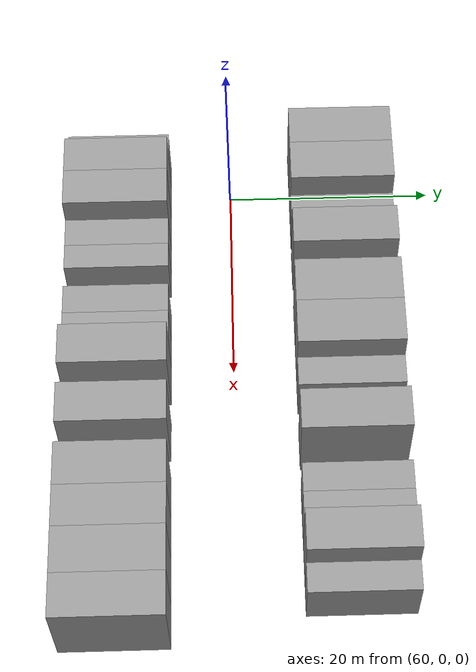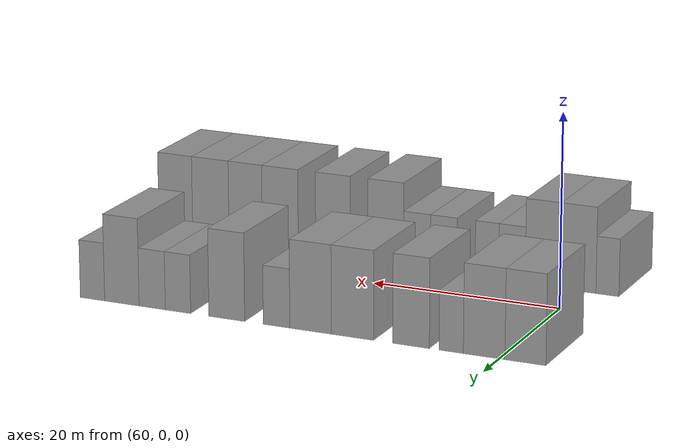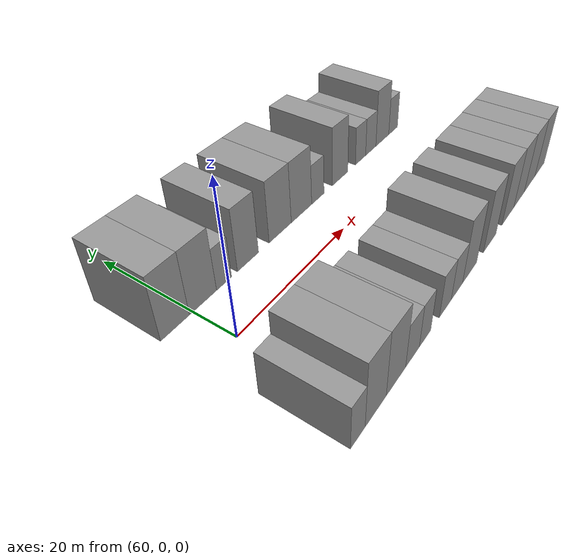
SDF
<sdf version="1.6">
 <world name="default">
  <model name="building_12">
   <static>1</static>
   <pose>57.4109 11.0000 0 0.000000 0.000000 1.570796</pose>
   <link name="link">
    <pose>0 0 4.50 0 0 0</pose>
    <collision name="collision"><geometry><box><size>10.0000 4.1077 9.0000</size></box></geometry></collision>
    <visual name="visual">
     <cast_shadows>0</cast_shadows>
     <geometry><box><size>10.0000 4.1077 9.0000</size></box></geometry>
     <material>
      <script>
       <uri>model://grey_wall/materials/scripts</uri>
       <uri>model://grey_wall/materials/textures</uri>
       <name>vrc/grey_wall</name>
      </script>
     </material>
    </visual>
   </link>
  </model>
  <model name="building_13">
   <static>1</static>
   <pose>61.5724 11.0000 0 0.000000 0.000000 1.570796</pose>
   <link name="link">
    <pose>0 0 4.50 0 0 0</pose>
    <collision name="collision"><geometry><box><size>10.0000 4.2152 9.0000</size></box></geometry></collision>
    <visual name="visual">
     <cast_shadows>0</cast_shadows>
     <geometry><box><size>10.0000 4.2152 9.0000</size></box></geometry>
     <material>
      <script>
       <uri>model://grey_wall/materials/scripts</uri>
       <uri>model://grey_wall/materials/textures</uri>
       <name>vrc/grey_wall</name>
      </script>
     </material>
    </visual>
   </link>
  </model>
  <model name="building_14">
   <static>1</static>
   <pose>64.9226 11.0000 0 0.000000 0.000000 1.570796</pose>
   <link name="link">
    <pose>0 0 3.00 0 0 0</pose>
    <collision name="collision"><geometry><box><size>10.0000 2.4853 6.0000</size></box></geometry></collision>
    <visual name="visual">
     <cast_shadows>0</cast_shadows>
     <geometry><box><size>10.0000 2.4853 6.0000</size></box></geometry>
     <material>
      <script>
       <uri>model://grey_wall/materials/scripts</uri>
       <uri>model://grey_wall/materials/textures</uri>
       <name>vrc/grey_wall</name>
      </script>
     </material>
    </visual>
   </link>
  </model>
  <model name="building_15">
   <static>1</static>
   <pose>69.0574 11.0000 0 0.000000 0.000000 1.570796</pose>
   <link name="link">
    <pose>0 0 4.50 0 0 0</pose>
    <collision name="collision"><geometry><box><size>10.0000 3.7844 9.0000</size></box></geometry></collision>
    <visual name="visual">
     <cast_shadows>0</cast_shadows>
     <geometry><box><size>10.0000 3.7844 9.0000</size></box></geometry>
     <material>
      <script>
       <uri>model://grey_wall/materials/scripts</uri>
       <uri>model://grey_wall/materials/textures</uri>
       <name>vrc/grey_wall</name>
      </script>
     </material>
    </visual>
   </link>
  </model>
  <model name="building_16">
   <static>1</static>
   <pose>75.1733 11.0000 0 0.000000 0.000000 1.570796</pose>
   <link name="link">
    <pose>0 0 4.50 0 0 0</pose>
    <collision name="collision"><geometry><box><size>10.0000 4.4473 9.0000</size></box></geometry></collision>
    <visual name="visual">
     <cast_shadows>0</cast_shadows>
     <geometry><box><size>10.0000 4.4473 9.0000</size></box></geometry>
     <material>
      <script>
       <uri>model://grey_wall/materials/scripts</uri>
       <uri>model://grey_wall/materials/textures</uri>
       <name>vrc/grey_wall</name>
      </script>
     </material>
    </visual>
   </link>
  </model>
  <model name="building_17">
   <static>1</static>
   <pose>79.6025 11.0000 0 0.000000 0.000000 1.570796</pose>
   <link name="link">
    <pose>0 0 4.50 0 0 0</pose>
    <collision name="collision"><geometry><box><size>10.0000 4.4111 9.0000</size></box></geometry></collision>
    <visual name="visual">
     <cast_shadows>0</cast_shadows>
     <geometry><box><size>10.0000 4.4111 9.0000</size></box></geometry>
     <material>
      <script>
       <uri>model://grey_wall/materials/scripts</uri>
       <uri>model://grey_wall/materials/textures</uri>
       <name>vrc/grey_wall</name>
      </script>
     </material>
    </visual>
   </link>
  </model>
  <model name="building_18">
   <static>1</static>
   <pose>83.2336 11.0000 0 0.000000 0.000000 1.570796</pose>
   <link name="link">
    <pose>0 0 3.00 0 0 0</pose>
    <collision name="collision"><geometry><box><size>10.0000 2.8511 6.0000</size></box></geometry></collision>
    <visual name="visual">
     <cast_shadows>0</cast_shadows>
     <geometry><box><size>10.0000 2.8511 6.0000</size></box></geometry>
     <material>
      <script>
       <uri>model://grey_wall/materials/scripts</uri>
       <uri>model://grey_wall/materials/textures</uri>
       <name>vrc/grey_wall</name>
      </script>
     </material>
    </visual>
   </link>
  </model>
  <model name="building_19">
   <static>1</static>
   <pose>88.6047 11.0000 0 0.000000 0.000000 1.570796</pose>
   <link name="link">
    <pose>0 0 4.50 0 0 0</pose>
    <collision name="collision"><geometry><box><size>10.0000 3.8911 9.0000</size></box></geometry></collision>
    <visual name="visual">
     <cast_shadows>0</cast_shadows>
     <geometry><box><size>10.0000 3.8911 9.0000</size></box></geometry>
     <material>
      <script>
       <uri>model://grey_wall/materials/scripts</uri>
       <uri>model://grey_wall/materials/textures</uri>
       <name>vrc/grey_wall</name>
      </script>
     </material>
    </visual>
   </link>
  </model>
  <model name="building_20">
   <static>1</static>
   <pose>93.9447 11.0000 0 0.000000 0.000000 1.570796</pose>
   <link name="link">
    <pose>0 0 3.00 0 0 0</pose>
    <collision name="collision"><geometry><box><size>10.0000 2.7890 6.0000</size></box></geometry></collision>
    <visual name="visual">
     <cast_shadows>0</cast_shadows>
     <geometry><box><size>10.0000 2.7890 6.0000</size></box></geometry>
     <material>
      <script>
       <uri>model://grey_wall/materials/scripts</uri>
       <uri>model://grey_wall/materials/textures</uri>
       <name>vrc/grey_wall</name>
      </script>
     </material>
    </visual>
   </link>
  </model>
  <model name="building_21">
   <static>1</static>
   <pose>96.7968 11.0000 0 0.000000 0.000000 1.570796</pose>
   <link name="link">
    <pose>0 0 3.00 0 0 0</pose>
    <collision name="collision"><geometry><box><size>10.0000 2.9152 6.0000</size></box></geometry></collision>
    <visual name="visual">
     <cast_shadows>0</cast_shadows>
     <geometry><box><size>10.0000 2.9152 6.0000</size></box></geometry>
     <material>
      <script>
       <uri>model://grey_wall/materials/scripts</uri>
       <uri>model://grey_wall/materials/textures</uri>
       <name>vrc/grey_wall</name>
      </script>
     </material>
    </visual>
   </link>
  </model>
  <model name="building_22">
   <static>1</static>
   <pose>100.1815 11.0000 0 0.000000 0.000000 1.570796</pose>
   <link name="link">
    <pose>0 0 4.50 0 0 0</pose>
    <collision name="collision"><geometry><box><size>10.0000 3.8543 9.0000</size></box></geometry></collision>
    <visual name="visual">
     <cast_shadows>0</cast_shadows>
     <geometry><box><size>10.0000 3.8543 9.0000</size></box></geometry>
     <material>
      <script>
       <uri>model://grey_wall/materials/scripts</uri>
       <uri>model://grey_wall/materials/textures</uri>
       <name>vrc/grey_wall</name>
      </script>
     </material>
    </visual>
   </link>
  </model>
  <model name="building_23">
   <static>1</static>
   <pose>103.4784 11.0000 0 0.000000 0.000000 1.570796</pose>
   <link name="link">
    <pose>0 0 3.00 0 0 0</pose>
    <collision name="collision"><geometry><box><size>10.0000 2.7394 6.0000</size></box></geometry></collision>
    <visual name="visual">
     <cast_shadows>0</cast_shadows>
     <geometry><box><size>10.0000 2.7394 6.0000</size></box></geometry>
     <material>
      <script>
       <uri>model://grey_wall/materials/scripts</uri>
       <uri>model://grey_wall/materials/textures</uri>
       <name>vrc/grey_wall</name>
      </script>
     </material>
    </visual>
   </link>
  </model>
  <model name="building_63">
   <static>1</static>
   <pose>57.2316 -11.0000 0 0.000000 0.000000 1.570796</pose>
   <link name="link">
    <pose>0 0 3.00 0 0 0</pose>
    <collision name="collision"><geometry><box><size>10.0000 2.4320 6.0000</size></box></geometry></collision>
    <visual name="visual">
     <cast_shadows>0</cast_shadows>
     <geometry><box><size>10.0000 2.4320 6.0000</size></box></geometry>
     <material>
      <script>
       <uri>model://grey_wall/materials/scripts</uri>
       <uri>model://grey_wall/materials/textures</uri>
       <name>vrc/grey_wall</name>
      </script>
     </material>
    </visual>
   </link>
  </model>
  <model name="building_64">
   <static>1</static>
   <pose>60.3391 -11.0000 0 0.000000 0.000000 1.570796</pose>
   <link name="link">
    <pose>0 0 4.50 0 0 0</pose>
    <collision name="collision"><geometry><box><size>10.0000 3.7830 9.0000</size></box></geometry></collision>
    <visual name="visual">
     <cast_shadows>0</cast_shadows>
     <geometry><box><size>10.0000 3.7830 9.0000</size></box></geometry>
     <material>
      <script>
       <uri>model://grey_wall/materials/scripts</uri>
       <uri>model://grey_wall/materials/textures</uri>
       <name>vrc/grey_wall</name>
      </script>
     </material>
    </visual>
   </link>
  </model>
  <model name="building_65">
   <static>1</static>
   <pose>64.1207 -11.0000 0 0.000000 0.000000 1.570796</pose>
   <link name="link">
    <pose>0 0 4.50 0 0 0</pose>
    <collision name="collision"><geometry><box><size>10.0000 3.7803 9.0000</size></box></geometry></collision>
    <visual name="visual">
     <cast_shadows>0</cast_shadows>
     <geometry><box><size>10.0000 3.7803 9.0000</size></box></geometry>
     <material>
      <script>
       <uri>model://grey_wall/materials/scripts</uri>
       <uri>model://grey_wall/materials/textures</uri>
       <name>vrc/grey_wall</name>
      </script>
     </material>
    </visual>
   </link>
  </model>
  <model name="building_66">
   <static>1</static>
   <pose>67.4562 -11.0000 0 0.000000 0.000000 1.570796</pose>
   <link name="link">
    <pose>0 0 3.00 0 0 0</pose>
    <collision name="collision"><geometry><box><size>10.0000 2.8907 6.0000</size></box></geometry></collision>
    <visual name="visual">
     <cast_shadows>0</cast_shadows>
     <geometry><box><size>10.0000 2.8907 6.0000</size></box></geometry>
     <material>
      <script>
       <uri>model://grey_wall/materials/scripts</uri>
       <uri>model://grey_wall/materials/textures</uri>
       <name>vrc/grey_wall</name>
      </script>
     </material>
    </visual>
   </link>
  </model>
  <model name="building_67">
   <static>1</static>
   <pose>70.1834 -11.0000 0 0.000000 0.000000 1.570796</pose>
   <link name="link">
    <pose>0 0 3.00 0 0 0</pose>
    <collision name="collision"><geometry><box><size>10.0000 2.5637 6.0000</size></box></geometry></collision>
    <visual name="visual">
     <cast_shadows>0</cast_shadows>
     <geometry><box><size>10.0000 2.5637 6.0000</size></box></geometry>
     <material>
      <script>
       <uri>model://grey_wall/materials/scripts</uri>
       <uri>model://grey_wall/materials/textures</uri>
       <name>vrc/grey_wall</name>
      </script>
     </material>
    </visual>
   </link>
  </model>
  <model name="building_68">
   <static>1</static>
   <pose>74.9344 -11.0000 0 0.000000 0.000000 1.570796</pose>
   <link name="link">
    <pose>0 0 3.00 0 0 0</pose>
    <collision name="collision"><geometry><box><size>10.0000 2.9383 6.0000</size></box></geometry></collision>
    <visual name="visual">
     <cast_shadows>0</cast_shadows>
     <geometry><box><size>10.0000 2.9383 6.0000</size></box></geometry>
     <material>
      <script>
       <uri>model://grey_wall/materials/scripts</uri>
       <uri>model://grey_wall/materials/textures</uri>
       <name>vrc/grey_wall</name>
      </script>
     </material>
    </visual>
   </link>
  </model>
  <model name="building_69">
   <static>1</static>
   <pose>77.8871 -11.0000 0 0.000000 0.000000 1.570796</pose>
   <link name="link">
    <pose>0 0 3.00 0 0 0</pose>
    <collision name="collision"><geometry><box><size>10.0000 2.9670 6.0000</size></box></geometry></collision>
    <visual name="visual">
     <cast_shadows>0</cast_shadows>
     <geometry><box><size>10.0000 2.9670 6.0000</size></box></geometry>
     <material>
      <script>
       <uri>model://grey_wall/materials/scripts</uri>
       <uri>model://grey_wall/materials/textures</uri>
       <name>vrc/grey_wall</name>
      </script>
     </material>
    </visual>
   </link>
  </model>
  <model name="building_70">
   <static>1</static>
   <pose>81.3668 -11.0000 0 0.000000 0.000000 1.570796</pose>
   <link name="link">
    <pose>0 0 4.50 0 0 0</pose>
    <collision name="collision"><geometry><box><size>10.0000 3.9924 9.0000</size></box></geometry></collision>
    <visual name="visual">
     <cast_shadows>0</cast_shadows>
     <geometry><box><size>10.0000 3.9924 9.0000</size></box></geometry>
     <material>
      <script>
       <uri>model://grey_wall/materials/scripts</uri>
       <uri>model://grey_wall/materials/textures</uri>
       <name>vrc/grey_wall</name>
      </script>
     </material>
    </visual>
   </link>
  </model>
  <model name="building_71">
   <static>1</static>
   <pose>87.3257 -11.0000 0 0.000000 0.000000 1.570796</pose>
   <link name="link">
    <pose>0 0 4.50 0 0 0</pose>
    <collision name="collision"><geometry><box><size>10.0000 3.9255 9.0000</size></box></geometry></collision>
    <visual name="visual">
     <cast_shadows>0</cast_shadows>
     <geometry><box><size>10.0000 3.9255 9.0000</size></box></geometry>
     <material>
      <script>
       <uri>model://grey_wall/materials/scripts</uri>
       <uri>model://grey_wall/materials/textures</uri>
       <name>vrc/grey_wall</name>
      </script>
     </material>
    </visual>
   </link>
  </model>
  <model name="building_72">
   <static>1</static>
   <pose>93.3514 -11.0000 0 0.000000 0.000000 1.570796</pose>
   <link name="link">
    <pose>0 0 4.50 0 0 0</pose>
    <collision name="collision"><geometry><box><size>10.0000 4.1259 9.0000</size></box></geometry></collision>
    <visual name="visual">
     <cast_shadows>0</cast_shadows>
     <geometry><box><size>10.0000 4.1259 9.0000</size></box></geometry>
     <material>
      <script>
       <uri>model://grey_wall/materials/scripts</uri>
       <uri>model://grey_wall/materials/textures</uri>
       <name>vrc/grey_wall</name>
      </script>
     </material>
    </visual>
   </link>
  </model>
  <model name="building_73">
   <static>1</static>
   <pose>97.3604 -11.0000 0 0.000000 0.000000 1.570796</pose>
   <link name="link">
    <pose>0 0 4.50 0 0 0</pose>
    <collision name="collision"><geometry><box><size>10.0000 3.8922 9.0000</size></box></geometry></collision>
    <visual name="visual">
     <cast_shadows>0</cast_shadows>
     <geometry><box><size>10.0000 3.8922 9.0000</size></box></geometry>
     <material>
      <script>
       <uri>model://grey_wall/materials/scripts</uri>
       <uri>model://grey_wall/materials/textures</uri>
       <name>vrc/grey_wall</name>
      </script>
     </material>
    </visual>
   </link>
  </model>
  <model name="building_74">
   <static>1</static>
   <pose>101.4374 -11.0000 0 0.000000 0.000000 1.570796</pose>
   <link name="link">
    <pose>0 0 4.50 0 0 0</pose>
    <collision name="collision"><geometry><box><size>10.0000 4.2617 9.0000</size></box></geometry></collision>
    <visual name="visual">
     <cast_shadows>0</cast_shadows>
     <geometry><box><size>10.0000 4.2617 9.0000</size></box></geometry>
     <material>
      <script>
       <uri>model://grey_wall/materials/scripts</uri>
       <uri>model://grey_wall/materials/textures</uri>
       <name>vrc/grey_wall</name>
      </script>
     </material>
    </visual>
   </link>
  </model>
  <model name="building_75">
   <static>1</static>
   <pose>105.5662 -11.0000 0 0.000000 0.000000 1.570796</pose>
   <link name="link">
    <pose>0 0 4.50 0 0 0</pose>
    <collision name="collision"><geometry><box><size>10.0000 3.9959 9.0000</size></box></geometry></collision>
    <visual name="visual">
     <cast_shadows>0</cast_shadows>
     <geometry><box><size>10.0000 3.9959 9.0000</size></box></geometry>
     <material>
      <script>
       <uri>model://grey_wall/materials/scripts</uri>
       <uri>model://grey_wall/materials/textures</uri>
       <name>vrc/grey_wall</name>
      </script>
     </material>
    </visual>
   </link>
  </model>
 </world>
</sdf>
